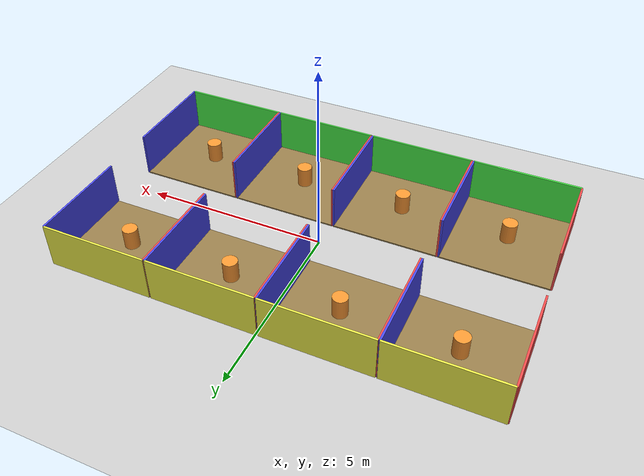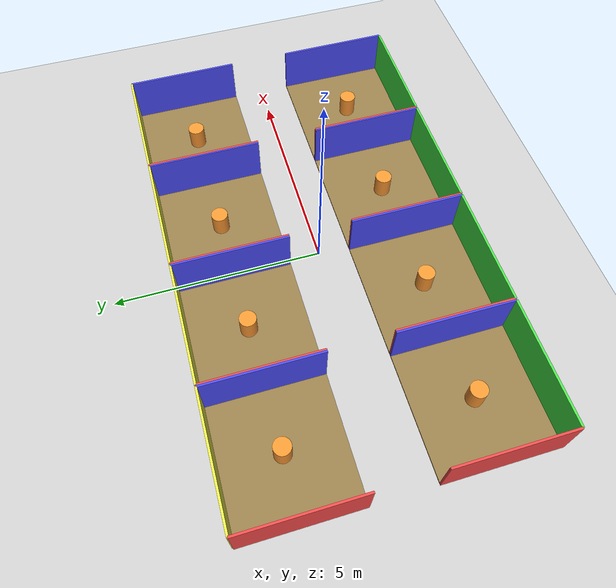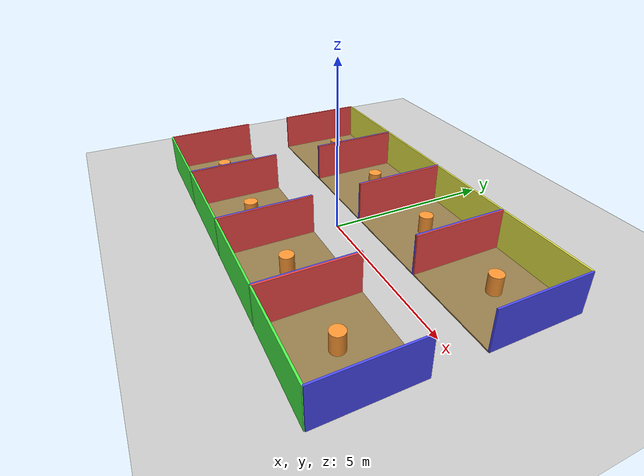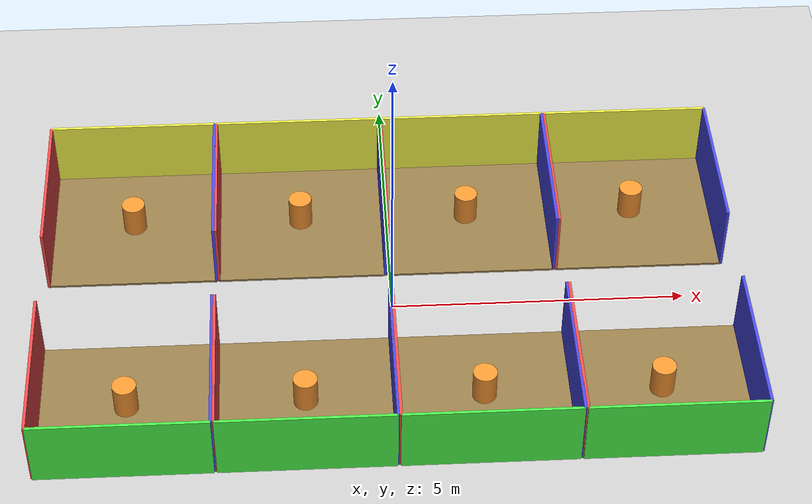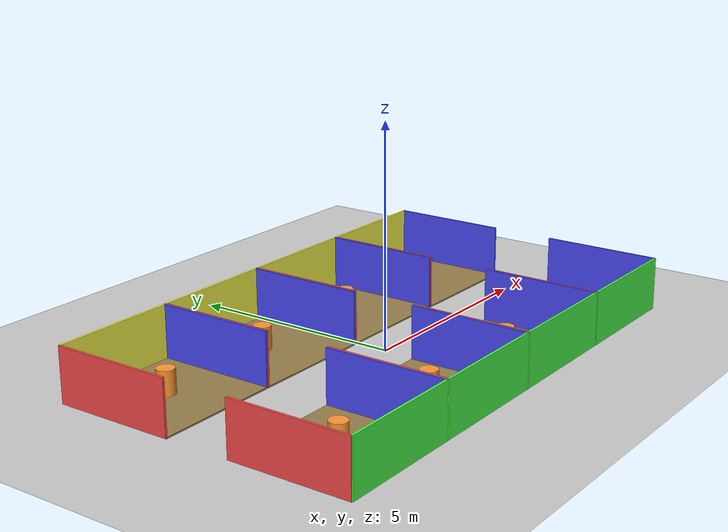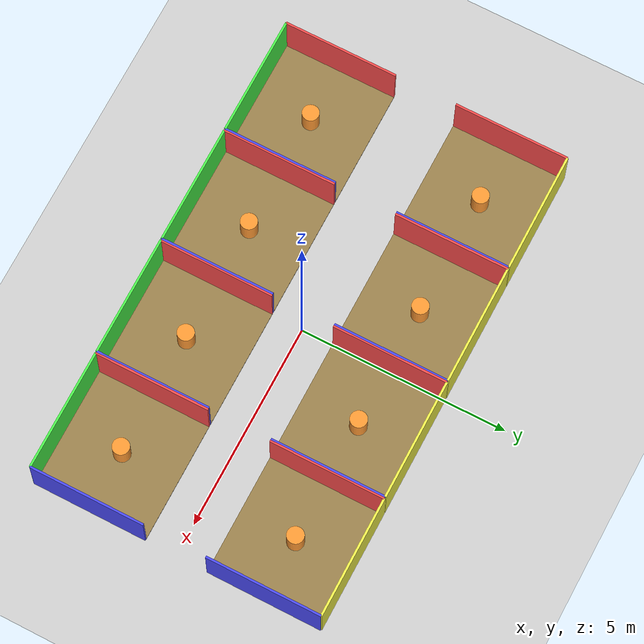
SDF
<?xml version='1.0' encoding='utf-8'?>
<sdf version="1.9">
  <world name="pig_pen_8units_world">
    <gravity>0 0 -9.8</gravity>
    <magnetic_field>0 0 0</magnetic_field>
    <atmosphere type="adiabatic" />
    <plugin filename="gz-sim-physics-system" name="gz::sim::systems::Physics" />
    <plugin filename="gz-sim-sensors-system" name="gz::sim::systems::Sensors">
      <render_engine>ogre2</render_engine>
    </plugin>
    <plugin filename="gz-sim-user-commands-system" name="gz::sim::systems::UserCommands" />
    <plugin filename="gz-sim-scene-broadcaster-system" name="gz::sim::systems::SceneBroadcaster" />
    <light name="sun" type="directional">
      <cast_shadows>true</cast_shadows>
      <pose>0 0 10 0 0 0</pose>
      <diffuse>0.9 0.9 0.9 1</diffuse>
      <specular>0.2 0.2 0.2 1</specular>
      <direction>-0.4 0.1 -1</direction>
    </light>
    <model name="ground_plane">
      <static>true</static>
      <link name="link">
        <collision name="collision">
          <geometry>
            <plane>
              <normal>0 0 1</normal>
              <size>20 20</size>
            </plane>
          </geometry>
        </collision>
        <visual name="visual">
          <geometry>
            <plane>
              <normal>0 0 1</normal>
              <size>20 20</size>
            </plane>
          </geometry>
          <material>
            <ambient>0.8 0.8 0.8 1</ambient>
            <diffuse>0.8 0.8 0.8 1</diffuse>
            <specular>0.2 0.2 0.2 1</specular>
          </material>
        </visual>
      </link>
    </model>

    <model name="pen1">
      <pose>-4.455 2.125 0 0 0 0</pose>
      <static>true</static>

      <link name="floor">
        <pose>0 0 0 0 0 0</pose>
        <visual name="visual">
          <geometry>
            <box>
              <size>2.89 2.75 0.05</size>
            </box>
          </geometry>
          <material>
            <ambient>0.6 0.5 0.3 1</ambient>
            <diffuse>0.6 0.5 0.3 1</diffuse>
          </material>
        </visual>
        <collision name="collision">
          <geometry>
            <box>
              <size>2.89 2.75 0.05</size>
            </box>
          </geometry>
        </collision>
      </link>

      <!-- 左牆（pen1，紅色） -->
      <link name="left_wall">
        <pose>-1.445 0 0.61 0 0 0</pose>
        <visual name="visual">
          <geometry>
            <box>
              <size>0.05 2.75 1.22</size>
            </box>
          </geometry>
          <material>
            <ambient>1.0 0.3 0.3 1</ambient>
            <diffuse>1.0 0.3 0.3 1</diffuse>
          </material>
        </visual>
        <collision name="collision">
          <geometry>
            <box>
              <size>0.05 2.75 1.22</size>
            </box>
          </geometry>
        </collision>
      </link>

      <!-- 右牆（pen1，藍色） -->
      <link name="right_wall">
        <pose>1.445 0 0.61 0 0 0</pose>
        <visual name="visual">
          <geometry>
            <box>
              <size>0.05 2.75 1.22</size>
            </box>
          </geometry>
          <material>
            <ambient>0.3 0.3 1.0 1</ambient>
            <diffuse>0.3 0.3 1.0 1</diffuse>
          </material>
        </visual>
        <collision name="collision">
          <geometry>
            <box>
              <size>0.05 2.75 1.22</size>
            </box>
          </geometry>
        </collision>
      </link>

      <!-- 後門（pen1 上排第 1 間，黃色） -->
      <link name="back_wall">
        <pose>0 1.375 0.61 0 0 0</pose>
        <visual name="visual">
          <geometry>
            <box>
              <size>2.89 0.05 1.22</size>
            </box>
          </geometry>
          <material>
            <ambient>1.0 1.0 0.3 1</ambient>
            <diffuse>1.0 1.0 0.3 1</diffuse>
          </material>
        </visual>
        <collision name="collision">
          <geometry>
            <box>
              <size>2.89 0.05 1.22</size>
            </box>
          </geometry>
        </collision>
      </link>

      <link name="feeder">
        <pose>0 0 0.325 0 0 0</pose>
        <visual name="visual">
          <geometry>
            <cylinder>
              <radius>0.20</radius>
              <length>0.55</length>
            </cylinder>
          </geometry>
          <material>
            <ambient>1.0 0.6 0.2 1</ambient>
            <diffuse>1.0 0.6 0.2 1</diffuse>
          </material>
        </visual>
        <collision name="collision">
          <geometry>
            <cylinder>
              <radius>0.20</radius>
              <length>0.55</length>
            </cylinder>
          </geometry>
        </collision>
      </link>
    </model>

    <model name="pen2">
      <pose>-1.525 2.125 0 0 0 0</pose>
      <static>true</static>

      <link name="floor">
        <pose>0 0 0 0 0 0</pose>
        <visual name="visual">
          <geometry>
            <box>
              <size>2.89 2.75 0.05</size>
            </box>
          </geometry>
          <material>
            <ambient>0.6 0.5 0.3 1</ambient>
            <diffuse>0.6 0.5 0.3 1</diffuse>
          </material>
        </visual>
        <collision name="collision">
          <geometry>
            <box>
              <size>2.89 2.75 0.05</size>
            </box>
          </geometry>
        </collision>
      </link>

      <!-- 左牆（pen2，紅色） -->
      <link name="left_wall">
        <pose>-1.445 0 0.61 0 0 0</pose>
        <visual name="visual">
          <geometry>
            <box>
              <size>0.05 2.75 1.22</size>
            </box>
          </geometry>
          <material>
            <ambient>1.0 0.3 0.3 1</ambient>
            <diffuse>1.0 0.3 0.3 1</diffuse>
          </material>
        </visual>
        <collision name="collision">
          <geometry>
            <box>
              <size>0.05 2.75 1.22</size>
            </box>
          </geometry>
        </collision>
      </link>

      <!-- 右牆（pen2，藍色） -->
      <link name="right_wall">
        <pose>1.445 0 0.61 0 0 0</pose>
        <visual name="visual">
          <geometry>
            <box>
              <size>0.05 2.75 1.22</size>
            </box>
          </geometry>
          <material>
            <ambient>0.3 0.3 1.0 1</ambient>
            <diffuse>0.3 0.3 1.0 1</diffuse>
          </material>
        </visual>
        <collision name="collision">
          <geometry>
            <box>
              <size>0.05 2.75 1.22</size>
            </box>
          </geometry>
        </collision>
      </link>

      <!-- 後門（pen2 上排第 2 間，黃色） -->
      <link name="back_wall">
        <pose>0 1.375 0.61 0 0 0</pose>
        <visual name="visual">
          <geometry>
            <box>
              <size>2.89 0.05 1.22</size>
            </box>
          </geometry>
          <material>
            <ambient>1.0 1.0 0.3 1</ambient>
            <diffuse>1.0 1.0 0.3 1</diffuse>
          </material>
        </visual>
        <collision name="collision">
          <geometry>
            <box>
              <size>2.89 0.05 1.22</size>
            </box>
          </geometry>
        </collision>
      </link>

      <link name="feeder">
        <pose>0 0 0.325 0 0 0</pose>
        <visual name="visual">
          <geometry>
            <cylinder>
              <radius>0.20</radius>
              <length>0.55</length>
            </cylinder>
          </geometry>
          <material>
            <ambient>1.0 0.6 0.2 1</ambient>
            <diffuse>1.0 0.6 0.2 1</diffuse>
          </material>
        </visual>
        <collision name="collision">
          <geometry>
            <cylinder>
              <radius>0.20</radius>
              <length>0.55</length>
            </cylinder>
          </geometry>
        </collision>
      </link>
    </model>

    <model name="pen3">
      <pose>1.405 2.125 0 0 0 0</pose>
      <static>true</static>

      <link name="floor">
        <pose>0 0 0 0 0 0</pose>
        <visual name="visual">
          <geometry>
            <box>
              <size>2.89 2.75 0.05</size>
            </box>
          </geometry>
          <material>
            <ambient>0.6 0.5 0.3 1</ambient>
            <diffuse>0.6 0.5 0.3 1</diffuse>
          </material>
        </visual>
        <collision name="collision">
          <geometry>
            <box>
              <size>2.89 2.75 0.05</size>
            </box>
          </geometry>
        </collision>
      </link>

      <!-- 左牆（pen3，紅色） -->
      <link name="left_wall">
        <pose>-1.445 0 0.61 0 0 0</pose>
        <visual name="visual">
          <geometry>
            <box>
              <size>0.05 2.75 1.22</size>
            </box>
          </geometry>
          <material>
            <ambient>1.0 0.3 0.3 1</ambient>
            <diffuse>1.0 0.3 0.3 1</diffuse>
          </material>
        </visual>
        <collision name="collision">
          <geometry>
            <box>
              <size>0.05 2.75 1.22</size>
            </box>
          </geometry>
        </collision>
      </link>

      <!-- 右牆（pen3，藍色） -->
      <link name="right_wall">
        <pose>1.445 0 0.61 0 0 0</pose>
        <visual name="visual">
          <geometry>
            <box>
              <size>0.05 2.75 1.22</size>
            </box>
          </geometry>
          <material>
            <ambient>0.3 0.3 1.0 1</ambient>
            <diffuse>0.3 0.3 1.0 1</diffuse>
          </material>
        </visual>
        <collision name="collision">
          <geometry>
            <box>
              <size>0.05 2.75 1.22</size>
            </box>
          </geometry>
        </collision>
      </link>

      <!-- 後門（pen3 上排第 3 間，黃色） -->
      <link name="back_wall">
        <pose>0 1.375 0.61 0 0 0</pose>
        <visual name="visual">
          <geometry>
            <box>
              <size>2.89 0.05 1.22</size>
            </box>
          </geometry>
          <material>
            <ambient>1.0 1.0 0.3 1</ambient>
            <diffuse>1.0 1.0 0.3 1</diffuse>
          </material>
        </visual>
        <collision name="collision">
          <geometry>
            <box>
              <size>2.89 0.05 1.22</size>
            </box>
          </geometry>
        </collision>
      </link>

      <link name="feeder">
        <pose>0 0 0.325 0 0 0</pose>
        <visual name="visual">
          <geometry>
            <cylinder>
              <radius>0.20</radius>
              <length>0.55</length>
            </cylinder>
          </geometry>
          <material>
            <ambient>1.0 0.6 0.2 1</ambient>
            <diffuse>1.0 0.6 0.2 1</diffuse>
          </material>
        </visual>
        <collision name="collision">
          <geometry>
            <cylinder>
              <radius>0.20</radius>
              <length>0.55</length>
            </cylinder>
          </geometry>
        </collision>
      </link>
    </model>

    <model name="pen4">
      <pose>4.335 2.125 0 0 0 0</pose>
      <static>true</static>

      <link name="floor">
        <pose>0 0 0 0 0 0</pose>
        <visual name="visual">
          <geometry>
            <box>
              <size>2.89 2.75 0.05</size>
            </box>
          </geometry>
          <material>
            <ambient>0.6 0.5 0.3 1</ambient>
            <diffuse>0.6 0.5 0.3 1</diffuse>
          </material>
        </visual>
        <collision name="collision">
          <geometry>
            <box>
              <size>2.89 2.75 0.05</size>
            </box>
          </geometry>
        </collision>
      </link>

      <!-- 左牆（pen4，紅色） -->
      <link name="left_wall">
        <pose>-1.445 0 0.61 0 0 0</pose>
        <visual name="visual">
          <geometry>
            <box>
              <size>0.05 2.75 1.22</size>
            </box>
          </geometry>
          <material>
            <ambient>1.0 0.3 0.3 1</ambient>
            <diffuse>1.0 0.3 0.3 1</diffuse>
          </material>
        </visual>
        <collision name="collision">
          <geometry>
            <box>
              <size>0.05 2.75 1.22</size>
            </box>
          </geometry>
        </collision>
      </link>

      <!-- 右牆（pen4，藍色） -->
      <link name="right_wall">
        <pose>1.445 0 0.61 0 0 0</pose>
        <visual name="visual">
          <geometry>
            <box>
              <size>0.05 2.75 1.22</size>
            </box>
          </geometry>
          <material>
            <ambient>0.3 0.3 1.0 1</ambient>
            <diffuse>0.3 0.3 1.0 1</diffuse>
          </material>
        </visual>
        <collision name="collision">
          <geometry>
            <box>
              <size>0.05 2.75 1.22</size>
            </box>
          </geometry>
        </collision>
      </link>

      <!-- 後門（pen4 上排第 4 間，黃色） -->
      <link name="back_wall">
        <pose>0 1.375 0.61 0 0 0</pose>
        <visual name="visual">
          <geometry>
            <box>
              <size>2.89 0.05 1.22</size>
            </box>
          </geometry>
          <material>
            <ambient>1.0 1.0 0.3 1</ambient>
            <diffuse>1.0 1.0 0.3 1</diffuse>
          </material>
        </visual>
        <collision name="collision">
          <geometry>
            <box>
              <size>2.89 0.05 1.22</size>
            </box>
          </geometry>
        </collision>
      </link>

      <link name="feeder">
        <pose>0 0 0.325 0 0 0</pose>
        <visual name="visual">
          <geometry>
            <cylinder>
              <radius>0.20</radius>
              <length>0.55</length>
            </cylinder>
          </geometry>
          <material>
            <ambient>1.0 0.6 0.2 1</ambient>
            <diffuse>1.0 0.6 0.2 1</diffuse>
          </material>
        </visual>
        <collision name="collision">
          <geometry>
            <cylinder>
              <radius>0.20</radius>
              <length>0.55</length>
            </cylinder>
          </geometry>
        </collision>
      </link>
    </model>

    <model name="pen5">
      <pose>-4.455 -2.125 0 0 0 0</pose>
      <static>true</static>

      <link name="floor">
        <pose>0 0 0 0 0 0</pose>
        <visual name="visual">
          <geometry>
            <box>
              <size>2.89 2.75 0.05</size>
            </box>
          </geometry>
          <material>
            <ambient>0.6 0.5 0.3 1</ambient>
            <diffuse>0.6 0.5 0.3 1</diffuse>
          </material>
        </visual>
        <collision name="collision">
          <geometry>
            <box>
              <size>2.89 2.75 0.05</size>
            </box>
          </geometry>
        </collision>
      </link>

      <!-- 左牆（pen5，紅色） -->
      <link name="left_wall">
        <pose>-1.445 0 0.61 0 0 0</pose>
        <visual name="visual">
          <geometry>
            <box>
              <size>0.05 2.75 1.22</size>
            </box>
          </geometry>
          <material>
            <ambient>1.0 0.3 0.3 1</ambient>
            <diffuse>1.0 0.3 0.3 1</diffuse>
          </material>
        </visual>
        <collision name="collision">
          <geometry>
            <box>
              <size>0.05 2.75 1.22</size>
            </box>
          </geometry>
        </collision>
      </link>

      <!-- 右牆（pen5，藍色） -->
      <link name="right_wall">
        <pose>1.445 0 0.61 0 0 0</pose>
        <visual name="visual">
          <geometry>
            <box>
              <size>0.05 2.75 1.22</size>
            </box>
          </geometry>
          <material>
            <ambient>0.3 0.3 1.0 1</ambient>
            <diffuse>0.3 0.3 1.0 1</diffuse>
          </material>
        </visual>
        <collision name="collision">
          <geometry>
            <box>
              <size>0.05 2.75 1.22</size>
            </box>
          </geometry>
        </collision>
      </link>

      <link name="front_wall">
        <pose>0 -1.375 0.61 0 0 0</pose>
        <visual name="visual">
          <geometry>
            <box>
              <size>2.89 0.05 1.22</size>
            </box>
          </geometry>
          <material>
            <ambient>0.3 1.0 0.3 1</ambient>
            <diffuse>0.3 1.0 0.3 1</diffuse>
          </material>
        </visual>
        <collision name="collision">
          <geometry>
            <box>
              <size>2.89 0.05 1.22</size>
            </box>
          </geometry>
        </collision>
      </link>

      <link name="feeder">
        <pose>0 0 0.325 0 0 0</pose>
        <visual name="visual">
          <geometry>
            <cylinder>
              <radius>0.20</radius>
              <length>0.55</length>
            </cylinder>
          </geometry>
          <material>
            <ambient>1.0 0.6 0.2 1</ambient>
            <diffuse>1.0 0.6 0.2 1</diffuse>
          </material>
        </visual>
        <collision name="collision">
          <geometry>
            <cylinder>
              <radius>0.20</radius>
              <length>0.55</length>
            </cylinder>
          </geometry>
        </collision>
      </link>
    </model>

    <model name="pen6">
      <pose>-1.525 -2.125 0 0 0 0</pose>
      <static>true</static>

      <link name="floor">
        <pose>0 0 0 0 0 0</pose>
        <visual name="visual">
          <geometry>
            <box>
              <size>2.89 2.75 0.05</size>
            </box>
          </geometry>
          <material>
            <ambient>0.6 0.5 0.3 1</ambient>
            <diffuse>0.6 0.5 0.3 1</diffuse>
          </material>
        </visual>
        <collision name="collision">
          <geometry>
            <box>
              <size>2.89 2.75 0.05</size>
            </box>
          </geometry>
        </collision>
      </link>

      <!-- 左牆（pen6，紅色） -->
      <link name="left_wall">
        <pose>-1.445 0 0.61 0 0 0</pose>
        <visual name="visual">
          <geometry>
            <box>
              <size>0.05 2.75 1.22</size>
            </box>
          </geometry>
          <material>
            <ambient>1.0 0.3 0.3 1</ambient>
            <diffuse>1.0 0.3 0.3 1</diffuse>
          </material>
        </visual>
        <collision name="collision">
          <geometry>
            <box>
              <size>0.05 2.75 1.22</size>
            </box>
          </geometry>
        </collision>
      </link>

      <!-- 右牆（pen6，藍色） -->
      <link name="right_wall">
        <pose>1.445 0 0.61 0 0 0</pose>
        <visual name="visual">
          <geometry>
            <box>
              <size>0.05 2.75 1.22</size>
            </box>
          </geometry>
          <material>
            <ambient>0.3 0.3 1.0 1</ambient>
            <diffuse>0.3 0.3 1.0 1</diffuse>
          </material>
        </visual>
        <collision name="collision">
          <geometry>
            <box>
              <size>0.05 2.75 1.22</size>
            </box>
          </geometry>
        </collision>
      </link>

      <link name="front_wall">
        <pose>0 -1.375 0.61 0 0 0</pose>
        <visual name="visual">
          <geometry>
            <box>
              <size>2.89 0.05 1.22</size>
            </box>
          </geometry>
          <material>
            <ambient>0.3 1.0 0.3 1</ambient>
            <diffuse>0.3 1.0 0.3 1</diffuse>
          </material>
        </visual>
        <collision name="collision">
          <geometry>
            <box>
              <size>2.89 0.05 1.22</size>
            </box>
          </geometry>
        </collision>
      </link>

      <link name="feeder">
        <pose>0 0 0.325 0 0 0</pose>
        <visual name="visual">
          <geometry>
            <cylinder>
              <radius>0.20</radius>
              <length>0.55</length>
            </cylinder>
          </geometry>
          <material>
            <ambient>1.0 0.6 0.2 1</ambient>
            <diffuse>1.0 0.6 0.2 1</diffuse>
          </material>
        </visual>
        <collision name="collision">
          <geometry>
            <cylinder>
              <radius>0.20</radius>
              <length>0.55</length>
            </cylinder>
          </geometry>
        </collision>
      </link>
    </model>

    <model name="pen7">
      <pose>1.405 -2.125 0 0 0 0</pose>
      <static>true</static>

      <link name="floor">
        <pose>0 0 0 0 0 0</pose>
        <visual name="visual">
          <geometry>
            <box>
              <size>2.89 2.75 0.05</size>
            </box>
          </geometry>
          <material>
            <ambient>0.6 0.5 0.3 1</ambient>
            <diffuse>0.6 0.5 0.3 1</diffuse>
          </material>
        </visual>
        <collision name="collision">
          <geometry>
            <box>
              <size>2.89 2.75 0.05</size>
            </box>
          </geometry>
        </collision>
      </link>

      <!-- 左牆（pen7，紅色） -->
      <link name="left_wall">
        <pose>-1.445 0 0.61 0 0 0</pose>
        <visual name="visual">
          <geometry>
            <box>
              <size>0.05 2.75 1.22</size>
            </box>
          </geometry>
          <material>
            <ambient>1.0 0.3 0.3 1</ambient>
            <diffuse>1.0 0.3 0.3 1</diffuse>
          </material>
        </visual>
        <collision name="collision">
          <geometry>
            <box>
              <size>0.05 2.75 1.22</size>
            </box>
          </geometry>
        </collision>
      </link>

      <!-- 右牆（pen7，藍色） -->
      <link name="right_wall">
        <pose>1.445 0 0.61 0 0 0</pose>
        <visual name="visual">
          <geometry>
            <box>
              <size>0.05 2.75 1.22</size>
            </box>
          </geometry>
          <material>
            <ambient>0.3 0.3 1.0 1</ambient>
            <diffuse>0.3 0.3 1.0 1</diffuse>
          </material>
        </visual>
        <collision name="collision">
          <geometry>
            <box>
              <size>0.05 2.75 1.22</size>
            </box>
          </geometry>
        </collision>
      </link>

      <link name="front_wall">
        <pose>0 -1.375 0.61 0 0 0</pose>
        <visual name="visual">
          <geometry>
            <box>
              <size>2.89 0.05 1.22</size>
            </box>
          </geometry>
          <material>
            <ambient>0.3 1.0 0.3 1</ambient>
            <diffuse>0.3 1.0 0.3 1</diffuse>
          </material>
        </visual>
        <collision name="collision">
          <geometry>
            <box>
              <size>2.89 0.05 1.22</size>
            </box>
          </geometry>
        </collision>
      </link>

      <link name="feeder">
        <pose>0 0 0.325 0 0 0</pose>
        <visual name="visual">
          <geometry>
            <cylinder>
              <radius>0.20</radius>
              <length>0.55</length>
            </cylinder>
          </geometry>
          <material>
            <ambient>1.0 0.6 0.2 1</ambient>
            <diffuse>1.0 0.6 0.2 1</diffuse>
          </material>
        </visual>
        <collision name="collision">
          <geometry>
            <cylinder>
              <radius>0.20</radius>
              <length>0.55</length>
            </cylinder>
          </geometry>
        </collision>
      </link>
    </model>

    <model name="pen8">
      <pose>4.335 -2.125 0 0 0 0</pose>
      <static>true</static>

      <link name="floor">
        <pose>0 0 0 0 0 0</pose>
        <visual name="visual">
          <geometry>
            <box>
              <size>2.89 2.75 0.05</size>
            </box>
          </geometry>
          <material>
            <ambient>0.6 0.5 0.3 1</ambient>
            <diffuse>0.6 0.5 0.3 1</diffuse>
          </material>
        </visual>
        <collision name="collision">
          <geometry>
            <box>
              <size>2.89 2.75 0.05</size>
            </box>
          </geometry>
        </collision>
      </link>

      <!-- 左牆（pen8，紅色） -->
      <link name="left_wall">
        <pose>-1.445 0 0.61 0 0 0</pose>
        <visual name="visual">
          <geometry>
            <box>
              <size>0.05 2.75 1.22</size>
            </box>
          </geometry>
          <material>
            <ambient>1.0 0.3 0.3 1</ambient>
            <diffuse>1.0 0.3 0.3 1</diffuse>
          </material>
        </visual>
        <collision name="collision">
          <geometry>
            <box>
              <size>0.05 2.75 1.22</size>
            </box>
          </geometry>
        </collision>
      </link>

      <!-- 右牆（pen8，藍色） -->
      <link name="right_wall">
        <pose>1.445 0 0.61 0 0 0</pose>
        <visual name="visual">
          <geometry>
            <box>
              <size>0.05 2.75 1.22</size>
            </box>
          </geometry>
          <material>
            <ambient>0.3 0.3 1.0 1</ambient>
            <diffuse>0.3 0.3 1.0 1</diffuse>
          </material>
        </visual>
        <collision name="collision">
          <geometry>
            <box>
              <size>0.05 2.75 1.22</size>
            </box>
          </geometry>
        </collision>
      </link>

      <link name="front_wall">
        <pose>0 -1.375 0.61 0 0 0</pose>
        <visual name="visual">
          <geometry>
            <box>
              <size>2.89 0.05 1.22</size>
            </box>
          </geometry>
          <material>
            <ambient>0.3 1.0 0.3 1</ambient>
            <diffuse>0.3 1.0 0.3 1</diffuse>
          </material>
        </visual>
        <collision name="collision">
          <geometry>
            <box>
              <size>2.89 0.05 1.22</size>
            </box>
          </geometry>
        </collision>
      </link>

      <link name="feeder">
        <pose>0 0 0.325 0 0 0</pose>
        <visual name="visual">
          <geometry>
            <cylinder>
              <radius>0.20</radius>
              <length>0.55</length>
            </cylinder>
          </geometry>
          <material>
            <ambient>1.0 0.6 0.2 1</ambient>
            <diffuse>1.0 0.6 0.2 1</diffuse>
          </material>
        </visual>
        <collision name="collision">
          <geometry>
            <cylinder>
              <radius>0.20</radius>
              <length>0.55</length>
            </cylinder>
          </geometry>
        </collision>
      </link>
    </model>
  </world>
</sdf>
